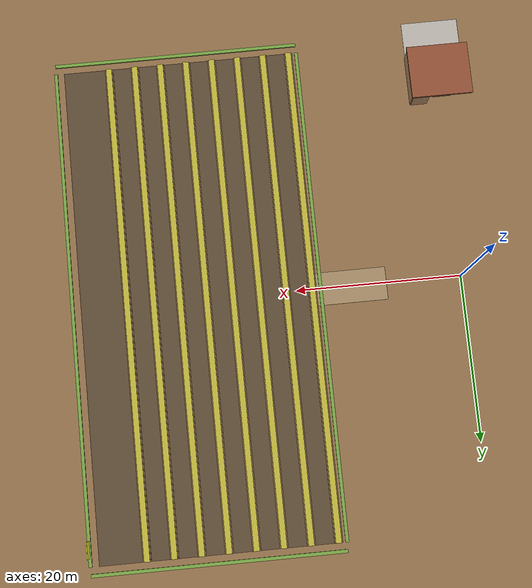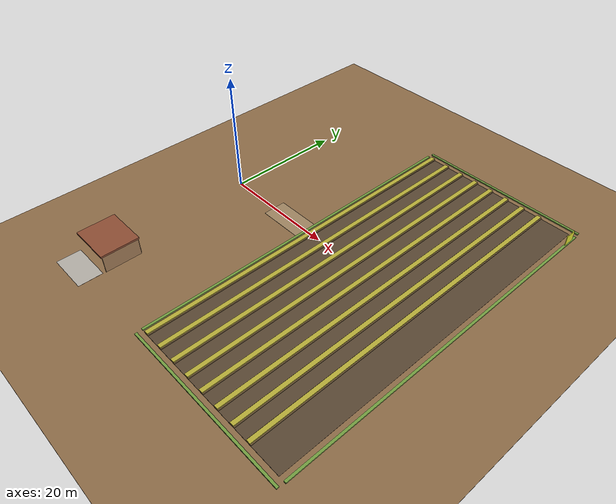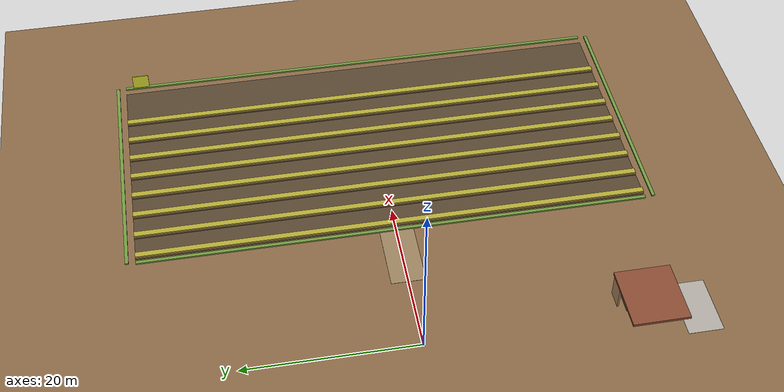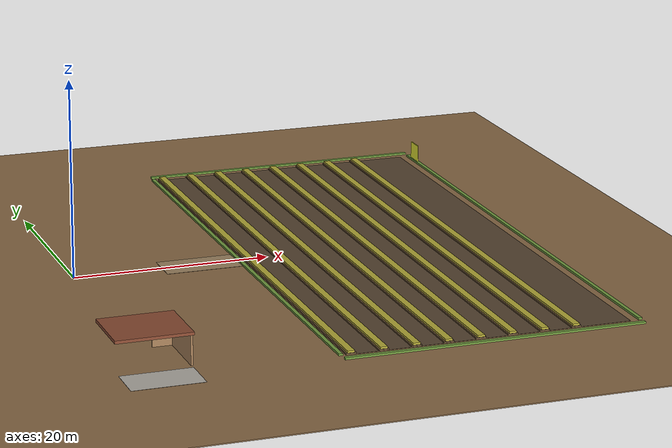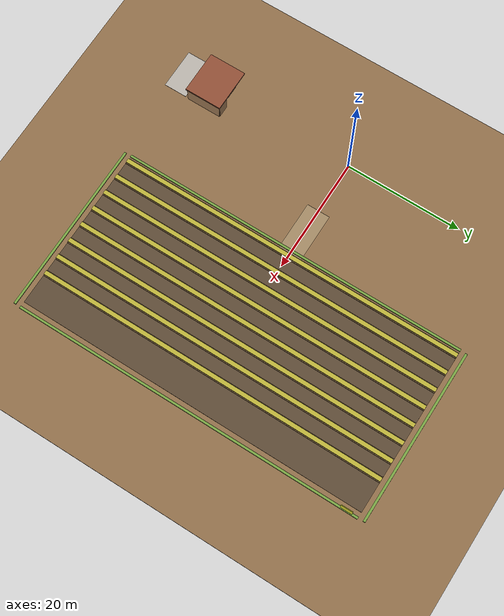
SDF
<sdf version="1.9">
 <world name="rice_field">
  <model name="ground">
   <static>true</static>
   <pose>0 0 -0.05 0 0 0</pose>
   <link name="link">
    <collision name="c"><geometry><box><size>400 400 0.1</size></box></geometry></collision>
    <visual name="v">
     <geometry><box><size>400 400 0.1</size></box></geometry>
     <material><ambient>0.55 0.42 0.28 1</ambient><diffuse>0.55 0.42 0.28 1</diffuse></material>
    </visual>
   </link>
  </model>
  <model name="fieldB_base">
   <static>true</static>
   <pose>32 0 0.0 0 0 0</pose>
   <link name="link">
    <collision name="c"><geometry><box><size>28 60 0.05</size></box></geometry></collision>
    <visual name="v">
     <geometry><box><size>28 60 0.05</size></box></geometry>
     <material><ambient>0.35 0.28 0.2 1</ambient><diffuse>0.35 0.28 0.2 1</diffuse></material>
    </visual>
   </link>
  </model>
  <model name="fieldB_ridge_0">
   <static>true</static>
   <pose>18.0 0 0.08 0 0 0</pose>
   <link name="link">
    <collision name="c"><geometry><box><size>1.0 60 0.16</size></box></geometry></collision>
    <visual name="v">
     <geometry><box><size>1.0 60 0.16</size></box></geometry>
     <material><ambient>0.45 0.35 0.22 1</ambient><diffuse>0.45 0.35 0.22 1</diffuse></material>
    </visual>
   </link>
  </model>
  <model name="fieldB_crop_0">
   <static>true</static>
   <pose>18.0 0 0.28 0 0 0</pose>
   <link name="link">
    <collision name="c"><geometry><box><size>0.7 60 0.2</size></box></geometry></collision>
    <visual name="v">
     <geometry><box><size>0.7 60 0.2</size></box></geometry>
     <material><ambient>0.72 0.68 0.22 1</ambient><diffuse>0.72 0.68 0.22 1</diffuse></material>
    </visual>
   </link>
  </model>
  <model name="fieldB_ridge_1">
   <static>true</static>
   <pose>21.2 0 0.08 0 0 0</pose>
   <link name="link">
    <collision name="c"><geometry><box><size>1.0 60 0.16</size></box></geometry></collision>
    <visual name="v">
     <geometry><box><size>1.0 60 0.16</size></box></geometry>
     <material><ambient>0.45 0.35 0.22 1</ambient><diffuse>0.45 0.35 0.22 1</diffuse></material>
    </visual>
   </link>
  </model>
  <model name="fieldB_crop_1">
   <static>true</static>
   <pose>21.2 0 0.28 0 0 0</pose>
   <link name="link">
    <collision name="c"><geometry><box><size>0.7 60 0.2</size></box></geometry></collision>
    <visual name="v">
     <geometry><box><size>0.7 60 0.2</size></box></geometry>
     <material><ambient>0.72 0.68 0.22 1</ambient><diffuse>0.72 0.68 0.22 1</diffuse></material>
    </visual>
   </link>
  </model>
  <model name="fieldB_ridge_2">
   <static>true</static>
   <pose>24.4 0 0.08 0 0 0</pose>
   <link name="link">
    <collision name="c"><geometry><box><size>1.0 60 0.16</size></box></geometry></collision>
    <visual name="v">
     <geometry><box><size>1.0 60 0.16</size></box></geometry>
     <material><ambient>0.45 0.35 0.22 1</ambient><diffuse>0.45 0.35 0.22 1</diffuse></material>
    </visual>
   </link>
  </model>
  <model name="fieldB_crop_2">
   <static>true</static>
   <pose>24.4 0 0.28 0 0 0</pose>
   <link name="link">
    <collision name="c"><geometry><box><size>0.7 60 0.2</size></box></geometry></collision>
    <visual name="v">
     <geometry><box><size>0.7 60 0.2</size></box></geometry>
     <material><ambient>0.72 0.68 0.22 1</ambient><diffuse>0.72 0.68 0.22 1</diffuse></material>
    </visual>
   </link>
  </model>
  <model name="fieldB_ridge_3">
   <static>true</static>
   <pose>27.6 0 0.08 0 0 0</pose>
   <link name="link">
    <collision name="c"><geometry><box><size>1.0 60 0.16</size></box></geometry></collision>
    <visual name="v">
     <geometry><box><size>1.0 60 0.16</size></box></geometry>
     <material><ambient>0.45 0.35 0.22 1</ambient><diffuse>0.45 0.35 0.22 1</diffuse></material>
    </visual>
   </link>
  </model>
  <model name="fieldB_crop_3">
   <static>true</static>
   <pose>27.6 0 0.28 0 0 0</pose>
   <link name="link">
    <collision name="c"><geometry><box><size>0.7 60 0.2</size></box></geometry></collision>
    <visual name="v">
     <geometry><box><size>0.7 60 0.2</size></box></geometry>
     <material><ambient>0.72 0.68 0.22 1</ambient><diffuse>0.72 0.68 0.22 1</diffuse></material>
    </visual>
   </link>
  </model>
  <model name="fieldB_ridge_4">
   <static>true</static>
   <pose>30.8 0 0.08 0 0 0</pose>
   <link name="link">
    <collision name="c"><geometry><box><size>1.0 60 0.16</size></box></geometry></collision>
    <visual name="v">
     <geometry><box><size>1.0 60 0.16</size></box></geometry>
     <material><ambient>0.45 0.35 0.22 1</ambient><diffuse>0.45 0.35 0.22 1</diffuse></material>
    </visual>
   </link>
  </model>
  <model name="fieldB_crop_4">
   <static>true</static>
   <pose>30.8 0 0.28 0 0 0</pose>
   <link name="link">
    <collision name="c"><geometry><box><size>0.7 60 0.2</size></box></geometry></collision>
    <visual name="v">
     <geometry><box><size>0.7 60 0.2</size></box></geometry>
     <material><ambient>0.72 0.68 0.22 1</ambient><diffuse>0.72 0.68 0.22 1</diffuse></material>
    </visual>
   </link>
  </model>
  <model name="fieldB_ridge_5">
   <static>true</static>
   <pose>34.0 0 0.08 0 0 0</pose>
   <link name="link">
    <collision name="c"><geometry><box><size>1.0 60 0.16</size></box></geometry></collision>
    <visual name="v">
     <geometry><box><size>1.0 60 0.16</size></box></geometry>
     <material><ambient>0.45 0.35 0.22 1</ambient><diffuse>0.45 0.35 0.22 1</diffuse></material>
    </visual>
   </link>
  </model>
  <model name="fieldB_crop_5">
   <static>true</static>
   <pose>34.0 0 0.28 0 0 0</pose>
   <link name="link">
    <collision name="c"><geometry><box><size>0.7 60 0.2</size></box></geometry></collision>
    <visual name="v">
     <geometry><box><size>0.7 60 0.2</size></box></geometry>
     <material><ambient>0.72 0.68 0.22 1</ambient><diffuse>0.72 0.68 0.22 1</diffuse></material>
    </visual>
   </link>
  </model>
  <model name="fieldB_ridge_6">
   <static>true</static>
   <pose>37.2 0 0.08 0 0 0</pose>
   <link name="link">
    <collision name="c"><geometry><box><size>1.0 60 0.16</size></box></geometry></collision>
    <visual name="v">
     <geometry><box><size>1.0 60 0.16</size></box></geometry>
     <material><ambient>0.45 0.35 0.22 1</ambient><diffuse>0.45 0.35 0.22 1</diffuse></material>
    </visual>
   </link>
  </model>
  <model name="fieldB_crop_6">
   <static>true</static>
   <pose>37.2 0 0.28 0 0 0</pose>
   <link name="link">
    <collision name="c"><geometry><box><size>0.7 60 0.2</size></box></geometry></collision>
    <visual name="v">
     <geometry><box><size>0.7 60 0.2</size></box></geometry>
     <material><ambient>0.72 0.68 0.22 1</ambient><diffuse>0.72 0.68 0.22 1</diffuse></material>
    </visual>
   </link>
  </model>
  <model name="fieldB_ridge_7">
   <static>true</static>
   <pose>40.400000000000006 0 0.08 0 0 0</pose>
   <link name="link">
    <collision name="c"><geometry><box><size>1.0 60 0.16</size></box></geometry></collision>
    <visual name="v">
     <geometry><box><size>1.0 60 0.16</size></box></geometry>
     <material><ambient>0.45 0.35 0.22 1</ambient><diffuse>0.45 0.35 0.22 1</diffuse></material>
    </visual>
   </link>
  </model>
  <model name="fieldB_crop_7">
   <static>true</static>
   <pose>40.400000000000006 0 0.28 0 0 0</pose>
   <link name="link">
    <collision name="c"><geometry><box><size>0.7 60 0.2</size></box></geometry></collision>
    <visual name="v">
     <geometry><box><size>0.7 60 0.2</size></box></geometry>
     <material><ambient>0.72 0.68 0.22 1</ambient><diffuse>0.72 0.68 0.22 1</diffuse></material>
    </visual>
   </link>
  </model>
  <model name="bundB_n">
   <static>true</static>
   <pose>32 31 0.1 0 0 0</pose>
   <link name="link">
    <collision name="c"><geometry><box><size>30 0.4 0.2</size></box></geometry></collision>
    <visual name="v">
     <geometry><box><size>30 0.4 0.2</size></box></geometry>
     <material><ambient>0.45 0.62 0.25 1</ambient><diffuse>0.45 0.62 0.25 1</diffuse></material>
    </visual>
   </link>
  </model>
  <model name="bundB_s">
   <static>true</static>
   <pose>32 -31 0.1 0 0 0</pose>
   <link name="link">
    <collision name="c"><geometry><box><size>30 0.4 0.2</size></box></geometry></collision>
    <visual name="v">
     <geometry><box><size>30 0.4 0.2</size></box></geometry>
     <material><ambient>0.45 0.62 0.25 1</ambient><diffuse>0.45 0.62 0.25 1</diffuse></material>
    </visual>
   </link>
  </model>
  <model name="bundB_e">
   <static>true</static>
   <pose>47 0 0.1 0 0 0</pose>
   <link name="link">
    <collision name="c"><geometry><box><size>0.4 60 0.2</size></box></geometry></collision>
    <visual name="v">
     <geometry><box><size>0.4 60 0.2</size></box></geometry>
     <material><ambient>0.45 0.62 0.25 1</ambient><diffuse>0.45 0.62 0.25 1</diffuse></material>
    </visual>
   </link>
  </model>
  <model name="bundB_w">
   <static>true</static>
   <pose>17 0 0.1 0 0 0</pose>
   <link name="link">
    <collision name="c"><geometry><box><size>0.4 60 0.2</size></box></geometry></collision>
    <visual name="v">
     <geometry><box><size>0.4 60 0.2</size></box></geometry>
     <material><ambient>0.45 0.62 0.25 1</ambient><diffuse>0.45 0.62 0.25 1</diffuse></material>
    </visual>
   </link>
  </model>
  <model name="signB">
   <static>true</static>
   <pose>47 28 1.0 0 0 0</pose>
   <link name="link">
    <collision name="c"><geometry><box><size>0.1 2.0 2.0</size></box></geometry></collision>
    <visual name="v">
     <geometry><box><size>0.1 2.0 2.0</size></box></geometry>
     <material><ambient>0.9 0.9 0.2 1</ambient><diffuse>0.9 0.9 0.2 1</diffuse></material>
    </visual>
   </link>
  </model>
  <model name="road_hB">
   <static>true</static>
   <pose>24 0 0.01 0 0 0</pose>
   <link name="link">
    <collision name="c"><geometry><box><size>30 4 0.02</size></box></geometry></collision>
    <visual name="v">
     <geometry><box><size>30 4 0.02</size></box></geometry>
     <material><ambient>0.62 0.52 0.38 1</ambient><diffuse>0.62 0.52 0.38 1</diffuse></material>
    </visual>
   </link>
  </model>
  <model name="hut_wall_sr">
   <static>true</static>
   <pose>2.5 -22.0 1.5 0 0 0</pose>
   <link name="link">
    <collision name="c"><geometry><box><size>2.0 0.2 3.0</size></box></geometry></collision>
    <visual name="v">
     <geometry><box><size>2.0 0.2 3.0</size></box></geometry>
     <material><ambient>0.65 0.5 0.35 1</ambient><diffuse>0.65 0.5 0.35 1</diffuse></material>
    </visual>
   </link>
  </model>
  <model name="hut_door_top">
   <static>true</static>
   <pose>0 -22.0 2.7 0 0 0</pose>
   <link name="link">
    <collision name="c"><geometry><box><size>2.2 0.2 0.6</size></box></geometry></collision>
    <visual name="v">
     <geometry><box><size>2.2 0.2 0.6</size></box></geometry>
     <material><ambient>0.65 0.5 0.35 1</ambient><diffuse>0.65 0.5 0.35 1</diffuse></material>
    </visual>
   </link>
  </model>
  <model name="hut_wall_e">
   <static>true</static>
   <pose>3.5 -25 1.5 0 0 0</pose>
   <link name="link">
    <collision name="c"><geometry><box><size>0.2 6.0 3.0</size></box></geometry></collision>
    <visual name="v">
     <geometry><box><size>0.2 6.0 3.0</size></box></geometry>
     <material><ambient>0.65 0.5 0.35 1</ambient><diffuse>0.65 0.5 0.35 1</diffuse></material>
    </visual>
   </link>
  </model>
  <model name="hut_roof">
   <static>true</static>
   <pose>0 -25 3.1 0 0 0</pose>
   <link name="link">
    <collision name="c"><geometry><box><size>7.4 6.4 0.3</size></box></geometry></collision>
    <visual name="v">
     <geometry><box><size>7.4 6.4 0.3</size></box></geometry>
     <material><ambient>0.55 0.3 0.2 1</ambient><diffuse>0.55 0.3 0.2 1</diffuse></material>
    </visual>
   </link>
  </model>
  <model name="hut_parking">
   <static>true</static>
   <pose>0 -30.5 0.01 0 0 0</pose>
   <link name="link">
    <collision name="c"><geometry><box><size>7.0 4.0 0.02</size></box></geometry></collision>
    <visual name="v">
     <geometry><box><size>7.0 4.0 0.02</size></box></geometry>
     <material><ambient>0.7 0.68 0.65 1</ambient><diffuse>0.7 0.68 0.65 1</diffuse></material>
    </visual>
   </link>
  </model>
 </world>
</sdf>
